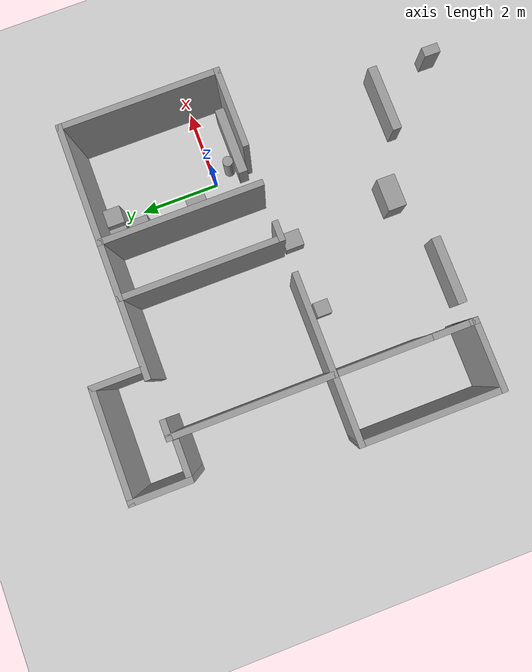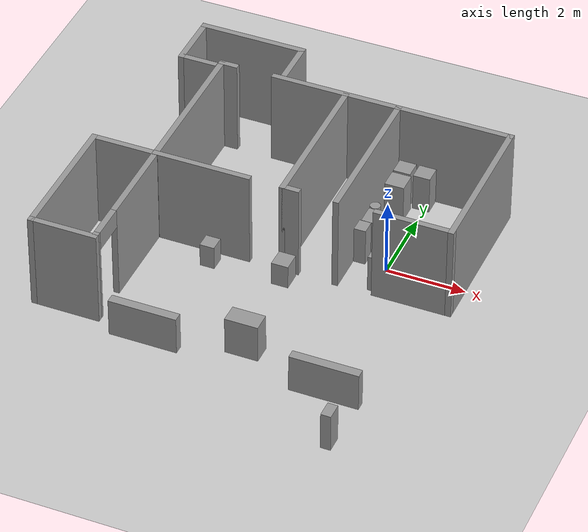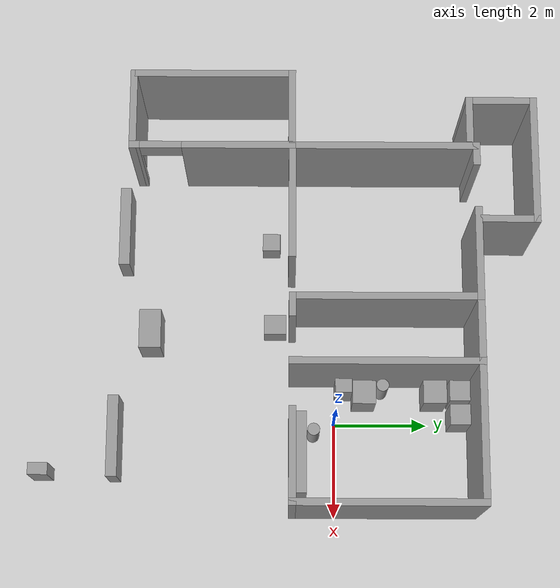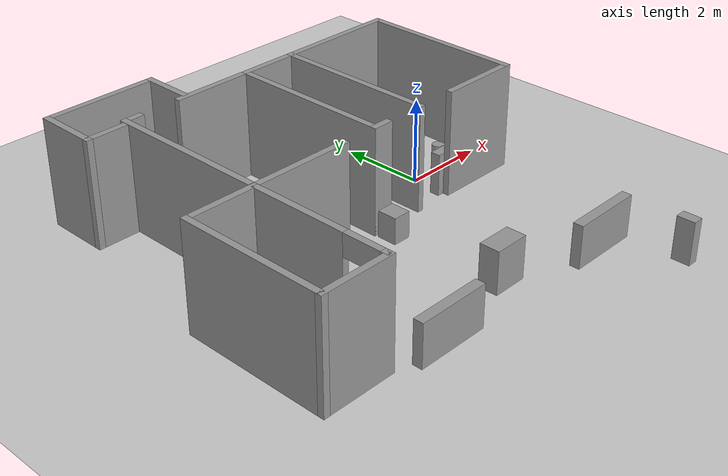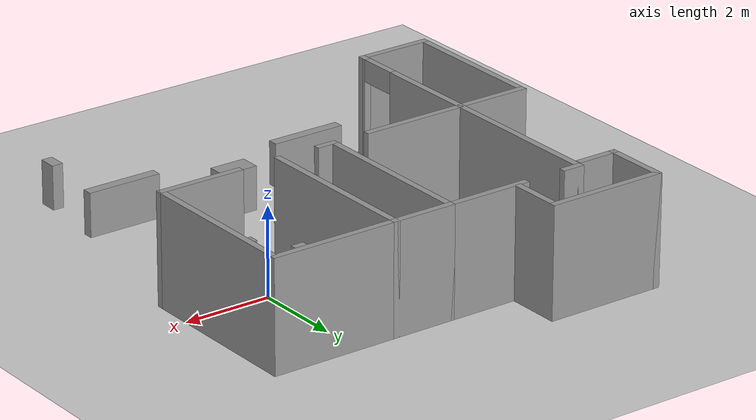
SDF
<sdf version="1.9">
 <world name="default">
  <model name="ground_plane">
   <static>true</static>
   <link name="link">
    <collision name="collision">
     <geometry><plane><normal>0 0 1</normal><size>100 100</size></plane></geometry>
     <surface><friction><ode><mu>100</mu><mu2>50</mu2></ode></friction></surface>
    </collision>
    <visual name="visual">
     <cast_shadows>false</cast_shadows>
     <geometry><plane><normal>0 0 1</normal><size>100 100</size></plane></geometry>
     <material>
      <script><uri>file://media/materials/scripts/gazebo.material</uri><name>Gazebo/Grey</name></script>
     </material>
    </visual>
   </link>
  </model>
  <model name="cma_escritorio">
   <pose>-1.7968200000000001 1.02121 0 0 0 0</pose>
   <link name="Wall_11">
    <collision name="Wall_11_Collision">
     <geometry><box><size>2 0.14999999999999999 2.5</size></box></geometry>
     <pose>0 0 1.25 0 0 0</pose>
    </collision>
    <visual name="Wall_11_Visual">
     <pose>0 0 1.25 0 0 0</pose>
     <geometry><box><size>2 0.14999999999999999 2.5</size></box></geometry>
     <material>
      <script><uri>file://media/materials/scripts/gazebo.material</uri><name>Gazebo/Grey</name></script>
      <ambient>1 1 1 1</ambient>
     </material>
    </visual>
    <pose>-1.3999999999999999 1.9299999999999999 0 0 0 3.1415899999999999</pose>
   </link>
   <link name="Wall_2">
    <collision name="Wall_2_Collision">
     <geometry><box><size>4 0.14999999999999999 2.5</size></box></geometry>
     <pose>0 0 1.25 0 0 0</pose>
    </collision>
    <visual name="Wall_2_Visual">
     <pose>0 0 1.25 0 0 0</pose>
     <geometry><box><size>4 0.14999999999999999 2.5</size></box></geometry>
     <material>
      <script><uri>file://media/materials/scripts/gazebo.material</uri><name>Gazebo/Grey</name></script>
      <ambient>1 1 1 1</ambient>
     </material>
    </visual>
    <pose>0.875 0.0050000000000000001 0 0 0 1.5708</pose>
   </link>
   <link name="Wall_25">
    <collision name="Wall_25_Collision">
     <geometry><box><size>2.5 0.14999999999999999 2.5</size></box></geometry>
     <pose>0 0 1.25 0 0 0</pose>
    </collision>
    <visual name="Wall_25_Visual">
     <pose>0 0 1.25 0 0 0</pose>
     <geometry><box><size>2.5 0.14999999999999999 2.5</size></box></geometry>
     <material>
      <script><uri>file://media/materials/scripts/gazebo.material</uri><name>Gazebo/Grey</name></script>
      <ambient>1 1 1 1</ambient>
     </material>
    </visual>
    <pose>-2.5499999999999998 -1.9299999999999999 0 0 0 3.1415899999999999</pose>
   </link>
   <link name="Wall_26">
    <collision name="Wall_26_Collision">
     <geometry><box><size>4 0.14999999999999999 2.5</size></box></geometry>
     <pose>0 0 1.25 0 0 0</pose>
    </collision>
    <visual name="Wall_26_Visual">
     <pose>0 0 1.25 0 0 0</pose>
     <geometry><box><size>4 0.14999999999999999 2.5</size></box></geometry>
     <material>
      <script><uri>file://media/materials/scripts/gazebo.material</uri><name>Gazebo/Grey</name></script>
      <ambient>1 1 1 1</ambient>
     </material>
    </visual>
    <pose>-3.7250000000000001 -0.0050000000000000001 0 0 0 1.5708</pose>
   </link>
   <link name="Wall_27">
    <collision name="Wall_27_Collision">
     <geometry><box><size>0.5 0.14999999999999999 2.5</size></box></geometry>
     <pose>0 0 1.25 0 0 0</pose>
    </collision>
    <visual name="Wall_27_Visual">
     <pose>0 0 1.25 0 0 0</pose>
     <geometry><box><size>0.5 0.14999999999999999 2.5</size></box></geometry>
     <material>
      <script><uri>file://media/materials/scripts/gazebo.material</uri><name>Gazebo/Grey</name></script>
      <ambient>1 1 1 1</ambient>
     </material>
    </visual>
    <pose>-3.5499999999999998 1.9199999999999999 0 0 0 0</pose>
   </link>
   <link name="Wall_3">
    <collision name="Wall_3_Collision">
     <geometry><box><size>3 0.14999999999999999 2.5</size></box></geometry>
     <pose>0 0 1.25 0 0 0</pose>
    </collision>
    <visual name="Wall_3_Visual">
     <pose>0 0 1.25 0 0 0</pose>
     <geometry><box><size>3 0.14999999999999999 2.5</size></box></geometry>
     <material>
      <script><uri>file://media/materials/scripts/gazebo.material</uri><name>Gazebo/Grey</name></script>
      <ambient>1 1 1 1</ambient>
     </material>
    </visual>
    <pose>2.2999999999999998 1.9299999999999999 0 0 0 0</pose>
   </link>
   <link name="Wall_4">
    <collision name="Wall_4_Collision">
     <geometry><box><size>4 0.14999999999999999 2.5</size></box></geometry>
     <pose>0 0 1.25 0 0 0</pose>
    </collision>
    <visual name="Wall_4_Visual">
     <pose>0 0 1.25 0 0 0</pose>
     <geometry><box><size>4 0.14999999999999999 2.5</size></box></geometry>
     <material>
      <script><uri>file://media/materials/scripts/gazebo.material</uri><name>Gazebo/Grey</name></script>
      <ambient>1 1 1 1</ambient>
     </material>
    </visual>
    <pose>3.7250000000000001 0.0050000000000000001 0 0 0 -1.5708</pose>
   </link>
   <link name="Wall_5">
    <collision name="Wall_5_Collision">
     <geometry><box><size>2 0.14999999999999999 2.5</size></box></geometry>
     <pose>0 0 1.25 0 0 0</pose>
    </collision>
    <visual name="Wall_5_Visual">
     <pose>0 0 1.25 0 0 0</pose>
     <geometry><box><size>2 0.14999999999999999 2.5</size></box></geometry>
     <material>
      <script><uri>file://media/materials/scripts/gazebo.material</uri><name>Gazebo/Grey</name></script>
      <ambient>1 1 1 1</ambient>
     </material>
    </visual>
    <pose>2.7999999999999998 -1.9199999999999999 0 0 0 3.1415899999999999</pose>
   </link>
   <link name="Wall_7">
    <collision name="Wall_7_Collision">
     <geometry><box><size>1.5 0.14999999999999999 2.5</size></box></geometry>
     <pose>0 0 1.25 0 0 0</pose>
    </collision>
    <visual name="Wall_7_Visual">
     <pose>0 0 1.25 0 0 0</pose>
     <geometry><box><size>1.5 0.14999999999999999 2.5</size></box></geometry>
     <material>
      <script><uri>file://media/materials/scripts/gazebo.material</uri><name>Gazebo/Grey</name></script>
      <ambient>1 1 1 1</ambient>
     </material>
    </visual>
    <pose>0.20000000000000001 1.9299999999999999 0 0 0 3.1415899999999999</pose>
   </link>
   <link name="Wall_8">
    <collision name="Wall_8_Collision">
     <geometry><box><size>4 0.14999999999999999 2.5</size></box></geometry>
     <pose>0 0 1.25 0 0 0</pose>
    </collision>
    <visual name="Wall_8_Visual">
     <pose>0 0 1.25 0 0 0</pose>
     <geometry><box><size>4 0.14999999999999999 2.5</size></box></geometry>
     <material>
      <script><uri>file://media/materials/scripts/gazebo.material</uri><name>Gazebo/Grey</name></script>
      <ambient>1 1 1 1</ambient>
     </material>
    </visual>
    <pose>-0.47499999999999998 0.0050000000000000001 0 0 0 -1.5708</pose>
   </link>
   <link name="Wall_9">
    <collision name="Wall_9_Collision">
     <geometry><box><size>0.5 0.14999999999999999 2.5</size></box></geometry>
     <pose>0 0 1.25 0 0 0</pose>
    </collision>
    <visual name="Wall_9_Visual">
     <pose>0 0 1.25 0 0 0</pose>
     <geometry><box><size>0.5 0.14999999999999999 2.5</size></box></geometry>
     <material>
      <script><uri>file://media/materials/scripts/gazebo.material</uri><name>Gazebo/Grey</name></script>
      <ambient>1 1 1 1</ambient>
     </material>
    </visual>
    <pose>-0.29999999999999999 -1.9199999999999999 0 0 0 0</pose>
   </link>
   <static>true</static>
  </model>
  <model name="cma_banheiro">
   <pose>-5.2292800000000002 3.4870999999999999 0 0 0 0</pose>
   <link name="Wall_0">
    <collision name="Wall_0_Collision">
     <geometry><box><size>1 0.14999999999999999 2.5</size></box></geometry>
     <pose>0 0 1.25 0 0 0</pose>
    </collision>
    <visual name="Wall_0_Visual">
     <pose>0 0 1.25 0 0 0</pose>
     <geometry><box><size>1 0.14999999999999999 2.5</size></box></geometry>
     <material>
      <script><uri>file://media/materials/scripts/gazebo.material</uri><name>Gazebo/Grey</name></script>
      <ambient>1 1 1 1</ambient>
     </material>
    </visual>
    <pose>-0.875 -0.67500000000000004 0 0 0 3.1415899999999999</pose>
   </link>
   <link name="Wall_1">
    <collision name="Wall_1_Collision">
     <geometry><box><size>1.5 0.14999999999999999 2.5</size></box></geometry>
     <pose>0 0 1.25 0 0 0</pose>
    </collision>
    <visual name="Wall_1_Visual">
     <pose>0 0 1.25 0 0 0</pose>
     <geometry><box><size>1.5 0.14999999999999999 2.5</size></box></geometry>
     <material>
      <script><uri>file://media/materials/scripts/gazebo.material</uri><name>Gazebo/Grey</name></script>
      <ambient>1 1 1 1</ambient>
     </material>
    </visual>
    <pose>-1.3 0 0 0 0 1.5708</pose>
   </link>
   <link name="Wall_2">
    <collision name="Wall_2_Collision">
     <geometry><box><size>2.75 0.14999999999999999 2.5</size></box></geometry>
     <pose>0 0 1.25 0 0 0</pose>
    </collision>
    <visual name="Wall_2_Visual">
     <pose>0 0 1.25 0 0 0</pose>
     <geometry><box><size>2.75 0.14999999999999999 2.5</size></box></geometry>
     <material>
      <script><uri>file://media/materials/scripts/gazebo.material</uri><name>Gazebo/Grey</name></script>
      <ambient>1 1 1 1</ambient>
     </material>
    </visual>
    <pose>0 0.67500000000000004 0 0 0 0</pose>
   </link>
   <link name="Wall_4">
    <collision name="Wall_4_Collision">
     <geometry><box><size>1.25 0.14999999999999999 2.5</size></box></geometry>
     <pose>0 0 1.25 0 0 0</pose>
    </collision>
    <visual name="Wall_4_Visual">
     <pose>0 0 1.25 0 0 0</pose>
     <geometry><box><size>1.25 0.14999999999999999 2.5</size></box></geometry>
     <material>
      <script><uri>file://media/materials/scripts/gazebo.material</uri><name>Gazebo/Grey</name></script>
      <ambient>1 1 1 1</ambient>
     </material>
    </visual>
    <pose>1.3 0.125 0 0 0 -1.5708</pose>
   </link>
   <static>true</static>
  </model>
  <model name="cma_varanda1">
   <pose>-6.3251799999999996 -2.5931299999999999 0 0 0 0</pose>
   <link name="Wall_0">
    <pose>0.80000000000000004 0 0 0 0 -1.5708</pose>
    <visual name="Wall_0_Visual_0">
     <pose>-0.55249999999999999 0 1.25 0 0 0</pose>
     <geometry><box><size>2.395 0.14999999999999999 2.5</size></box></geometry>
     <material>
      <script><uri>file://media/materials/scripts/gazebo.material</uri><name>Gazebo/Grey</name></script>
      <ambient>1 1 1 1</ambient>
     </material>
    </visual>
    <collision name="Wall_0_Collision_0">
     <geometry><box><size>2.395 0.14999999999999999 2.5</size></box></geometry>
     <pose>-0.55249999999999999 0 1.25 0 0 0</pose>
    </collision>
    <visual name="Wall_0_Visual_1">
     <pose>1.6375 0 1.25 0 0 0</pose>
     <geometry><box><size>0.22500000000000001 0.14999999999999999 2.5</size></box></geometry>
     <material>
      <script><uri>file://media/materials/scripts/gazebo.material</uri><name>Gazebo/Grey</name></script>
      <ambient>1 1 1 1</ambient>
     </material>
    </visual>
    <collision name="Wall_0_Collision_1">
     <geometry><box><size>0.22500000000000001 0.14999999999999999 2.5</size></box></geometry>
     <pose>1.6375 0 1.25 0 0 0</pose>
    </collision>
    <visual name="Wall_0_Visual_2">
     <pose>1.085 0 2.25 0 0 0</pose>
     <geometry><box><size>0.88 0.14999999999999999 0.5</size></box></geometry>
     <material>
      <script><uri>file://media/materials/scripts/gazebo.material</uri><name>Gazebo/Grey</name></script>
      <ambient>1 1 1 1</ambient>
     </material>
    </visual>
    <collision name="Wall_0_Collision_2">
     <geometry><box><size>0.88 0.14999999999999999 0.5</size></box></geometry>
     <pose>1.085 0 2.25 0 0 0</pose>
    </collision>
   </link>
   <link name="Wall_1">
    <collision name="Wall_1_Collision">
     <geometry><box><size>1.75 0.14999999999999999 2.5</size></box></geometry>
     <pose>0 0 1.25 0 0 0</pose>
    </collision>
    <visual name="Wall_1_Visual">
     <pose>0 0 1.25 0 0 0</pose>
     <geometry><box><size>1.75 0.14999999999999999 2.5</size></box></geometry>
     <material>
      <script><uri>file://media/materials/scripts/gazebo.material</uri><name>Gazebo/Grey</name></script>
      <ambient>1 1 1 1</ambient>
     </material>
    </visual>
    <pose>0 -1.675 0 0 0 3.1415899999999999</pose>
   </link>
   <link name="Wall_2">
    <collision name="Wall_2_Collision">
     <geometry><box><size>3.5 0.14999999999999999 2.5</size></box></geometry>
     <pose>0 0 1.25 0 0 0</pose>
    </collision>
    <visual name="Wall_2_Visual">
     <pose>0 0 1.25 0 0 0</pose>
     <geometry><box><size>3.5 0.14999999999999999 2.5</size></box></geometry>
     <material>
      <script><uri>file://media/materials/scripts/gazebo.material</uri><name>Gazebo/Grey</name></script>
      <ambient>1 1 1 1</ambient>
     </material>
    </visual>
    <pose>-0.80000000000000004 0 0 0 0 1.5708</pose>
   </link>
   <link name="Wall_3">
    <collision name="Wall_3_Collision">
     <geometry><box><size>1.75 0.14999999999999999 2.5</size></box></geometry>
     <pose>0 0 1.25 0 0 0</pose>
    </collision>
    <visual name="Wall_3_Visual">
     <pose>0 0 1.25 0 0 0</pose>
     <geometry><box><size>1.75 0.14999999999999999 2.5</size></box></geometry>
     <material>
      <script><uri>file://media/materials/scripts/gazebo.material</uri><name>Gazebo/Grey</name></script>
      <ambient>1 1 1 1</ambient>
     </material>
    </visual>
    <pose>0 1.675 0 0 0 0</pose>
   </link>
   <static>true</static>
  </model>
  <model name="cma_armario">
   <link name="link_0">
    <pose>1.3215699999999999 0.88517800000000002 0.5 0 0 0</pose>
    <inertial>
     <mass>0.40237600000000001</mass>
     <inertia>
      <ixx>0.0353686</ixx>
      <ixy>0</ixy>
      <ixz>0</ixz>
      <iyy>0.13261600000000001</iyy>
      <iyz>0</iyz>
      <izz>0.100922</izz>
     </inertia>
    </inertial>
    <visual name="visual">
     <geometry><box><size>1.7187699999999999 0.234069 1</size></box></geometry>
     <material>
      <lighting>true</lighting>
      <script><uri>file://media/materials/scripts/gazebo.material</uri><name>Gazebo/Grey</name></script>
      <ambient>0.300000012 0.300000012 0.300000012 1</ambient>
      <diffuse>0.699999988 0.699999988 0.699999988 1</diffuse>
      <specular>0.00999999978 0.00999999978 0.00999999978 1</specular>
      <emissive>0 0 0 1</emissive>
     </material>
    </visual>
    <collision name="collision">
     <geometry><box><size>1.7187699999999999 0.234069 1</size></box></geometry>
     <surface>
      <friction>
       <ode><mu>1</mu><mu2>1</mu2><fdir1>0 0 0</fdir1><slip1>0</slip1><slip2>0</slip2></ode>
       <torsional>
        <coefficient>1</coefficient>
        <patch_radius>0</patch_radius>
        <surface_radius>0</surface_radius>
        <use_patch_radius>true</use_patch_radius>
        <ode><slip>0</slip></ode>
       </torsional>
      </friction>
      <bounce><restitution_coefficient>0</restitution_coefficient><threshold>1000000</threshold></bounce>
      <contact>
       <collide_without_contact>false</collide_without_contact>
       <collide_without_contact_bitmask>1</collide_without_contact_bitmask>
       <collide_bitmask>1</collide_bitmask>
       <ode>
        <soft_cfm>0</soft_cfm>
        <soft_erp>0.20000000000000001</soft_erp>
        <kp>10000000000000</kp>
        <kd>1</kd>
        <max_vel>0.01</max_vel>
        <min_depth>0</min_depth>
       </ode>
       <bullet>
        <split_impulse>true</split_impulse>
        <split_impulse_penetration_threshold>-0.01</split_impulse_penetration_threshold>
        <soft_cfm>0</soft_cfm>
        <soft_erp>0.20000000000000001</soft_erp>
        <kp>10000000000000</kp>
        <kd>1</kd>
       </bullet>
      </contact>
     </surface>
    </collision>
   </link>
   <static>false</static>
   <pose>-0.61409400000000003 -1.5922099999999999 -1.4e-05 0 -6.0000000000000002e-06 0.0008259999999999998</pose>
  </model>
  <model name="cma_lixo">
   <link name="link_1">
    <pose>0.88296200000000002 1.81586 0.5 0 0 0</pose>
    <inertial>
     <mass>0.068764400000000003</mass>
     <inertia>
      <ixx>0.00602588</ixx>
      <ixy>0</ixy>
      <ixz>0</ixz>
      <iyy>0.00602588</iyy>
      <iyz>0</iyz>
      <izz>0.00059106800000000004</izz>
     </inertia>
    </inertial>
    <visual name="visual">
     <geometry><cylinder><radius>0.13111200000000001</radius><length>1</length></cylinder></geometry>
     <material>
      <lighting>true</lighting>
      <script><uri>file://media/materials/scripts/gazebo.material</uri><name>Gazebo/Grey</name></script>
      <ambient>0.300000012 0.300000012 0.300000012 1</ambient>
      <diffuse>0.699999988 0.699999988 0.699999988 1</diffuse>
      <specular>0.00999999978 0.00999999978 0.00999999978 1</specular>
      <emissive>0 0 0 1</emissive>
     </material>
    </visual>
    <collision name="collision">
     <geometry><cylinder><radius>0.13111200000000001</radius><length>1</length></cylinder></geometry>
     <surface>
      <friction>
       <ode><mu>1</mu><mu2>1</mu2><fdir1>0 0 0</fdir1><slip1>0</slip1><slip2>0</slip2></ode>
       <torsional>
        <coefficient>1</coefficient>
        <patch_radius>0</patch_radius>
        <surface_radius>0</surface_radius>
        <use_patch_radius>true</use_patch_radius>
        <ode><slip>0</slip></ode>
       </torsional>
      </friction>
      <bounce><restitution_coefficient>0</restitution_coefficient><threshold>1000000</threshold></bounce>
      <contact>
       <collide_without_contact>false</collide_without_contact>
       <collide_without_contact_bitmask>1</collide_without_contact_bitmask>
       <collide_bitmask>1</collide_bitmask>
       <ode>
        <soft_cfm>0</soft_cfm>
        <soft_erp>0.20000000000000001</soft_erp>
        <kp>10000000000000</kp>
        <kd>1</kd>
        <max_vel>0.01</max_vel>
        <min_depth>0</min_depth>
       </ode>
       <bullet>
        <split_impulse>true</split_impulse>
        <split_impulse_penetration_threshold>-0.01</split_impulse_penetration_threshold>
        <soft_cfm>0</soft_cfm>
        <soft_erp>0.20000000000000001</soft_erp>
        <kp>10000000000000</kp>
        <kd>1</kd>
       </bullet>
      </contact>
     </surface>
    </collision>
   </link>
   <static>false</static>
   <pose>-0.62784099999999998 -2.2669899999999998 -9.9999999999999995e-07 0 0 0.010421999999999999</pose>
  </model>
  <model name="cma_gaveteiro_pequeno">
   <link name="link_0">
    <pose>0.25617400000000001 1.2505500000000001 0.5 0 0 0</pose>
    <inertial>
     <mass>0.18718599999999999</mass>
     <inertia>
      <ixx>0.018509999999999999</ixx>
      <ixy>0</ixy>
      <ixz>0</ixz>
      <iyy>0.018527600000000002</iyy>
      <iyz>0</iyz>
      <izz>0.00583981</izz>
     </inertia>
    </inertial>
    <visual name="visual">
     <geometry><box><size>0.43331700000000001 0.432002 1</size></box></geometry>
     <material>
      <lighting>true</lighting>
      <script><uri>file://media/materials/scripts/gazebo.material</uri><name>Gazebo/Grey</name></script>
      <ambient>0.300000012 0.300000012 0.300000012 1</ambient>
      <diffuse>0.699999988 0.699999988 0.699999988 1</diffuse>
      <specular>0.00999999978 0.00999999978 0.00999999978 1</specular>
      <emissive>0 0 0 1</emissive>
     </material>
    </visual>
    <collision name="collision">
     <geometry><box><size>0.43331700000000001 0.432002 1</size></box></geometry>
     <surface>
      <friction>
       <ode><mu>1</mu><mu2>1</mu2><fdir1>0 0 0</fdir1><slip1>0</slip1><slip2>0</slip2></ode>
       <torsional>
        <coefficient>1</coefficient>
        <patch_radius>0</patch_radius>
        <surface_radius>0</surface_radius>
        <use_patch_radius>true</use_patch_radius>
        <ode><slip>0</slip></ode>
       </torsional>
      </friction>
      <bounce><restitution_coefficient>0</restitution_coefficient><threshold>1000000</threshold></bounce>
      <contact>
       <collide_without_contact>false</collide_without_contact>
       <collide_without_contact_bitmask>1</collide_without_contact_bitmask>
       <collide_bitmask>1</collide_bitmask>
       <ode>
        <soft_cfm>0</soft_cfm>
        <soft_erp>0.20000000000000001</soft_erp>
        <kp>10000000000000</kp>
        <kd>1</kd>
        <max_vel>0.01</max_vel>
        <min_depth>0</min_depth>
       </ode>
       <bullet>
        <split_impulse>true</split_impulse>
        <split_impulse_penetration_threshold>-0.01</split_impulse_penetration_threshold>
        <soft_cfm>0</soft_cfm>
        <soft_erp>0.20000000000000001</soft_erp>
        <kp>10000000000000</kp>
        <kd>1</kd>
       </bullet>
      </contact>
     </surface>
    </collision>
   </link>
   <static>false</static>
   <pose>-0.85304000000000002 1.39432 0 0 0 2.5000000000000001e-05</pose>
  </model>
  <model name="cma_gaveteiro_pequeno_0">
   <link name="link_0">
    <pose>0.25617400000000001 1.2505500000000001 0.5 0 0 0</pose>
    <inertial>
     <mass>0.18718599999999999</mass>
     <inertia>
      <ixx>0.018509999999999999</ixx>
      <ixy>0</ixy>
      <ixz>0</ixz>
      <iyy>0.018527600000000002</iyy>
      <iyz>0</iyz>
      <izz>0.00583981</izz>
     </inertia>
    </inertial>
    <visual name="visual">
     <geometry><box><size>0.43331700000000001 0.432002 1</size></box></geometry>
     <material>
      <lighting>true</lighting>
      <script><uri>file://media/materials/scripts/gazebo.material</uri><name>Gazebo/Grey</name></script>
      <ambient>0.300000012 0.300000012 0.300000012 1</ambient>
      <diffuse>0.699999988 0.699999988 0.699999988 1</diffuse>
      <specular>0.00999999978 0.00999999978 0.00999999978 1</specular>
      <emissive>0 0 0 1</emissive>
     </material>
    </visual>
    <collision name="collision">
     <geometry><box><size>0.43331700000000001 0.432002 1</size></box></geometry>
     <surface>
      <friction>
       <ode><mu>1</mu><mu2>1</mu2><fdir1>0 0 0</fdir1><slip1>0</slip1><slip2>0</slip2></ode>
       <torsional>
        <coefficient>1</coefficient>
        <patch_radius>0</patch_radius>
        <surface_radius>0</surface_radius>
        <use_patch_radius>true</use_patch_radius>
        <ode><slip>0</slip></ode>
       </torsional>
      </friction>
      <bounce><restitution_coefficient>0</restitution_coefficient><threshold>1000000</threshold></bounce>
      <contact>
       <collide_without_contact>false</collide_without_contact>
       <collide_without_contact_bitmask>1</collide_without_contact_bitmask>
       <collide_bitmask>1</collide_bitmask>
       <ode>
        <soft_cfm>0</soft_cfm>
        <soft_erp>0.20000000000000001</soft_erp>
        <kp>10000000000000</kp>
        <kd>1</kd>
        <max_vel>0.01</max_vel>
        <min_depth>0</min_depth>
       </ode>
       <bullet>
        <split_impulse>true</split_impulse>
        <split_impulse_penetration_threshold>-0.01</split_impulse_penetration_threshold>
        <soft_cfm>0</soft_cfm>
        <soft_erp>0.20000000000000001</soft_erp>
        <kp>10000000000000</kp>
        <kd>1</kd>
       </bullet>
      </contact>
     </surface>
    </collision>
   </link>
   <static>false</static>
   <pose>-0.34129199999999998 1.3951 0 9.9999999999999974e-07 1.9999999999999999e-06 -4.5000000000000003e-05</pose>
  </model>
  <model name="cma_gaveteiro">
   <link name="link_0">
    <pose>0 3.9999999999999998e-06 0 0 0 0</pose>
    <inertial>
     <mass>0.245086</mass>
     <inertia>
      <ixx>0.025418</ixx>
      <ixy>0</ixy>
      <ixz>0</ixz>
      <iyy>0.025441100000000001</iyy>
      <iyz>0</iyz>
      <izz>0.010011300000000001</izz>
     </inertia>
    </inertial>
    <visual name="visual">
     <geometry><box><size>0.49565700000000001 0.49449100000000001 1</size></box></geometry>
     <material>
      <lighting>true</lighting>
      <script><uri>file://media/materials/scripts/gazebo.material</uri><name>Gazebo/Grey</name></script>
      <ambient>0.300000012 0.300000012 0.300000012 1</ambient>
      <diffuse>0.699999988 0.699999988 0.699999988 1</diffuse>
      <specular>0.00999999978 0.00999999978 0.00999999978 1</specular>
      <emissive>0 0 0 1</emissive>
     </material>
    </visual>
    <collision name="collision">
     <geometry><box><size>0.49565700000000001 0.49449100000000001 1</size></box></geometry>
     <surface>
      <friction>
       <ode><mu>1</mu><mu2>1</mu2><fdir1>0 0 0</fdir1><slip1>0</slip1><slip2>0</slip2></ode>
       <torsional>
        <coefficient>1</coefficient>
        <patch_radius>0</patch_radius>
        <surface_radius>0</surface_radius>
        <use_patch_radius>true</use_patch_radius>
        <ode><slip>0</slip></ode>
       </torsional>
      </friction>
      <bounce><restitution_coefficient>0</restitution_coefficient><threshold>1000000</threshold></bounce>
      <contact>
       <collide_without_contact>false</collide_without_contact>
       <collide_without_contact_bitmask>1</collide_without_contact_bitmask>
       <collide_bitmask>1</collide_bitmask>
       <ode>
        <soft_cfm>0</soft_cfm>
        <soft_erp>0.20000000000000001</soft_erp>
        <kp>10000000000000</kp>
        <kd>1</kd>
        <max_vel>0.01</max_vel>
        <min_depth>0</min_depth>
       </ode>
       <bullet>
        <split_impulse>true</split_impulse>
        <split_impulse_penetration_threshold>-0.01</split_impulse_penetration_threshold>
        <soft_cfm>0</soft_cfm>
        <soft_erp>0.20000000000000001</soft_erp>
        <kp>10000000000000</kp>
        <kd>1</kd>
       </bullet>
      </contact>
     </surface>
    </collision>
   </link>
   <static>false</static>
   <pose>-0.56907399999999997 2.1223000000000001 0.499998 -4.9999999999999996e-06 -4.0000000000000015e-06 0.00033100000000000008</pose>
  </model>
  <model name="cma_gaveteiro_0">
   <link name="link_0">
    <pose>0 3.9999999999999998e-06 0 0 0 0</pose>
    <inertial>
     <mass>0.245086</mass>
     <inertia>
      <ixx>0.025418</ixx>
      <ixy>0</ixy>
      <ixz>0</ixz>
      <iyy>0.025441100000000001</iyy>
      <iyz>0</iyz>
      <izz>0.010011300000000001</izz>
     </inertia>
    </inertial>
    <visual name="visual">
     <geometry><box><size>0.49565700000000001 0.49449100000000001 1</size></box></geometry>
     <material>
      <lighting>true</lighting>
      <script><uri>file://media/materials/scripts/gazebo.material</uri><name>Gazebo/Grey</name></script>
      <ambient>0.300000012 0.300000012 0.300000012 1</ambient>
      <diffuse>0.699999988 0.699999988 0.699999988 1</diffuse>
      <specular>0.00999999978 0.00999999978 0.00999999978 1</specular>
      <emissive>0 0 0 1</emissive>
     </material>
    </visual>
    <collision name="collision">
     <geometry><box><size>0.49565700000000001 0.49449100000000001 1</size></box></geometry>
     <surface>
      <friction>
       <ode><mu>1</mu><mu2>1</mu2><fdir1>0 0 0</fdir1><slip1>0</slip1><slip2>0</slip2></ode>
       <torsional>
        <coefficient>1</coefficient>
        <patch_radius>0</patch_radius>
        <surface_radius>0</surface_radius>
        <use_patch_radius>true</use_patch_radius>
        <ode><slip>0</slip></ode>
       </torsional>
      </friction>
      <bounce><restitution_coefficient>0</restitution_coefficient><threshold>1000000</threshold></bounce>
      <contact>
       <collide_without_contact>false</collide_without_contact>
       <collide_without_contact_bitmask>1</collide_without_contact_bitmask>
       <collide_bitmask>1</collide_bitmask>
       <ode>
        <soft_cfm>0</soft_cfm>
        <soft_erp>0.20000000000000001</soft_erp>
        <kp>10000000000000</kp>
        <kd>1</kd>
        <max_vel>0.01</max_vel>
        <min_depth>0</min_depth>
       </ode>
       <bullet>
        <split_impulse>true</split_impulse>
        <split_impulse_penetration_threshold>-0.01</split_impulse_penetration_threshold>
        <soft_cfm>0</soft_cfm>
        <soft_erp>0.20000000000000001</soft_erp>
        <kp>10000000000000</kp>
        <kd>1</kd>
       </bullet>
      </contact>
     </surface>
    </collision>
   </link>
   <static>false</static>
   <pose>-0.560145 0.62360099999999996 0.5 0 0 -0.0078100000000000001</pose>
  </model>
  <model name="cma_lixo_0">
   <link name="link_1">
    <pose>0.88296200000000002 1.81586 0.5 0 0 0</pose>
    <inertial>
     <mass>0.068764400000000003</mass>
     <inertia>
      <ixx>0.00602588</ixx>
      <ixy>0</ixy>
      <ixz>0</ixz>
      <iyy>0.00602588</iyy>
      <iyz>0</iyz>
      <izz>0.00059106800000000004</izz>
     </inertia>
    </inertial>
    <visual name="visual">
     <geometry><cylinder><radius>0.13111200000000001</radius><length>1</length></cylinder></geometry>
     <material>
      <lighting>true</lighting>
      <script><uri>file://media/materials/scripts/gazebo.material</uri><name>Gazebo/Grey</name></script>
      <ambient>0.300000012 0.300000012 0.300000012 1</ambient>
      <diffuse>0.699999988 0.699999988 0.699999988 1</diffuse>
      <specular>0.00999999978 0.00999999978 0.00999999978 1</specular>
      <emissive>0 0 0 1</emissive>
     </material>
    </visual>
    <collision name="collision">
     <geometry><cylinder><radius>0.13111200000000001</radius><length>1</length></cylinder></geometry>
     <surface>
      <friction>
       <ode><mu>1</mu><mu2>1</mu2><fdir1>0 0 0</fdir1><slip1>0</slip1><slip2>0</slip2></ode>
       <torsional>
        <coefficient>1</coefficient>
        <patch_radius>0</patch_radius>
        <surface_radius>0</surface_radius>
        <use_patch_radius>true</use_patch_radius>
        <ode><slip>0</slip></ode>
       </torsional>
      </friction>
      <bounce><restitution_coefficient>0</restitution_coefficient><threshold>1000000</threshold></bounce>
      <contact>
       <collide_without_contact>false</collide_without_contact>
       <collide_without_contact_bitmask>1</collide_without_contact_bitmask>
       <collide_bitmask>1</collide_bitmask>
       <ode>
        <soft_cfm>0</soft_cfm>
        <soft_erp>0.20000000000000001</soft_erp>
        <kp>10000000000000</kp>
        <kd>1</kd>
        <max_vel>0.01</max_vel>
        <min_depth>0</min_depth>
       </ode>
       <bullet>
        <split_impulse>true</split_impulse>
        <split_impulse_penetration_threshold>-0.01</split_impulse_penetration_threshold>
        <soft_cfm>0</soft_cfm>
        <soft_erp>0.20000000000000001</soft_erp>
        <kp>10000000000000</kp>
        <kd>1</kd>
       </bullet>
      </contact>
     </surface>
    </collision>
   </link>
   <static>false</static>
   <pose>-1.5905199999999999 -0.796852 -3.0000000000000001e-06 0 0 0.0007049999999999999</pose>
  </model>
  <model name="unit_box_0">
   <pose>-0.697515 0.193796 0.5 0 0 3.9999999999999998e-06</pose>
   <link name="link">
    <inertial>
     <mass>1</mass>
     <inertia>
      <ixx>0.16666700000000001</ixx>
      <ixy>0</ixy>
      <ixz>0</ixz>
      <iyy>0.16666700000000001</iyy>
      <iyz>0</iyz>
      <izz>0.16666700000000001</izz>
     </inertia>
    </inertial>
    <collision name="collision"><geometry><box><size>0.298595 0.35513 1</size></box></geometry></collision>
    <visual name="visual">
     <geometry><box><size>0.298595 0.35513 1</size></box></geometry>
     <material>
      <script><name>Gazebo/Grey</name><uri>file://media/materials/scripts/gazebo.material</uri></script>
     </material>
    </visual>
   </link>
  </model>
  <model name="cma_bau_s">
   <link name="link_1">
    <pose>0.109594 0.27229300000000001 0 0 0 0</pose>
    <inertial>
     <mass>0.12547900000000001</mass>
     <inertia>
      <ixx>0.0064194300000000003</ixx>
      <ixy>0</ixy>
      <ixz>0</ixz>
      <iyy>0.0059753999999999996</iyy>
      <iyz>0</iyz>
      <izz>0.0042208499999999999</izz>
     </inertia>
    </inertial>
    <visual name="visual">
     <geometry><box><size>0.42496400000000001 0.47228300000000001 0.62511799999999995</size></box></geometry>
     <material>
      <lighting>true</lighting>
      <script><uri>file://media/materials/scripts/gazebo.material</uri><name>Gazebo/Grey</name></script>
      <ambient>0.300000012 0.300000012 0.300000012 1</ambient>
      <diffuse>0.699999988 0.699999988 0.699999988 1</diffuse>
      <specular>0.00999999978 0.00999999978 0.00999999978 1</specular>
      <emissive>0 0 0 1</emissive>
     </material>
    </visual>
    <collision name="collision">
     <geometry><box><size>0.42496400000000001 0.47228300000000001 0.62511799999999995</size></box></geometry>
     <surface>
      <friction>
       <ode><mu>1</mu><mu2>1</mu2><fdir1>0 0 0</fdir1><slip1>0</slip1><slip2>0</slip2></ode>
       <torsional>
        <coefficient>1</coefficient>
        <patch_radius>0</patch_radius>
        <surface_radius>0</surface_radius>
        <use_patch_radius>true</use_patch_radius>
        <ode><slip>0</slip></ode>
       </torsional>
      </friction>
      <bounce><restitution_coefficient>0</restitution_coefficient><threshold>1000000</threshold></bounce>
      <contact>
       <collide_without_contact>false</collide_without_contact>
       <collide_without_contact_bitmask>1</collide_without_contact_bitmask>
       <collide_bitmask>1</collide_bitmask>
       <ode>
        <soft_cfm>0</soft_cfm>
        <soft_erp>0.20000000000000001</soft_erp>
        <kp>10000000000000</kp>
        <kd>1</kd>
        <max_vel>0.01</max_vel>
        <min_depth>0</min_depth>
       </ode>
       <bullet>
        <split_impulse>true</split_impulse>
        <split_impulse_penetration_threshold>-0.01</split_impulse_penetration_threshold>
        <soft_cfm>0</soft_cfm>
        <soft_erp>0.20000000000000001</soft_erp>
        <kp>10000000000000</kp>
        <kd>1</kd>
       </bullet>
      </contact>
     </surface>
    </collision>
   </link>
   <static>false</static>
   <pose>-2.2097699999999998 -1.5406299999999999 0.31255300000000003 1.2999999999999998e-05 2.9999999999999997e-06 9.9999999999999995e-07</pose>
  </model>
  <model name="cma_armario_s">
   <link name="link_1">
    <pose>-1.9999999999999999e-06 -3.0000000000000001e-06 0 0 0 0</pose>
    <inertial>
     <mass>0.39015899999999998</mass>
     <inertia>
      <ixx>0.039647000000000002</ixx>
      <ixy>0</ixy>
      <ixz>0</ixz>
      <iyy>0.055070800000000003</iyy>
      <iyz>0</iyz>
      <izz>0.029691200000000001</izz>
     </inertia>
    </inertial>
    <visual name="visual">
     <geometry><box><size>0.83294199999999996 0.46839700000000001 1</size></box></geometry>
     <material>
      <lighting>true</lighting>
      <script><uri>file://media/materials/scripts/gazebo.material</uri><name>Gazebo/Grey</name></script>
      <ambient>0.300000012 0.300000012 0.300000012 1</ambient>
      <diffuse>0.699999988 0.699999988 0.699999988 1</diffuse>
      <specular>0.00999999978 0.00999999978 0.00999999978 1</specular>
      <emissive>0 0 0 1</emissive>
     </material>
    </visual>
    <collision name="collision">
     <geometry><box><size>0.83294199999999996 0.46839700000000001 1</size></box></geometry>
     <surface>
      <friction>
       <ode><mu>1</mu><mu2>1</mu2><fdir1>0 0 0</fdir1><slip1>0</slip1><slip2>0</slip2></ode>
       <torsional>
        <coefficient>1</coefficient>
        <patch_radius>0</patch_radius>
        <surface_radius>0</surface_radius>
        <use_patch_radius>true</use_patch_radius>
        <ode><slip>0</slip></ode>
       </torsional>
      </friction>
      <bounce><restitution_coefficient>0</restitution_coefficient><threshold>1000000</threshold></bounce>
      <contact>
       <collide_without_contact>false</collide_without_contact>
       <collide_without_contact_bitmask>1</collide_without_contact_bitmask>
       <collide_bitmask>1</collide_bitmask>
       <ode>
        <soft_cfm>0</soft_cfm>
        <soft_erp>0.20000000000000001</soft_erp>
        <kp>10000000000000</kp>
        <kd>1</kd>
        <max_vel>0.01</max_vel>
        <min_depth>0</min_depth>
       </ode>
       <bullet>
        <split_impulse>true</split_impulse>
        <split_impulse_penetration_threshold>-0.01</split_impulse_penetration_threshold>
        <soft_cfm>0</soft_cfm>
        <soft_erp>0.20000000000000001</soft_erp>
        <kp>10000000000000</kp>
        <kd>1</kd>
       </bullet>
      </contact>
     </surface>
    </collision>
   </link>
   <static>false</static>
   <pose>-1.91896 -3.93452 0.5 0 0 0.000183</pose>
  </model>
  <model name="cma_apoio_s">
   <link name="link_1">
    <pose>-1.9376 -3.4655100000000001 0.5 0 0 0</pose>
    <inertial>
     <mass>0.087846300000000002</mass>
     <inertia>
      <ixx>0.0039269600000000002</ixx>
      <ixy>0</ixy>
      <ixz>0</ixz>
      <iyy>0.0038535599999999998</iyy>
      <iyz>0</iyz>
      <izz>0.0020587000000000001</izz>
     </inertia>
    </inertial>
    <visual name="visual">
     <geometry><box><size>0.36822300000000002 0.38159199999999999 0.62511799999999995</size></box></geometry>
     <material>
      <lighting>true</lighting>
      <script><uri>file://media/materials/scripts/gazebo.material</uri><name>Gazebo/Grey</name></script>
      <ambient>0.300000012 0.300000012 0.300000012 1</ambient>
      <diffuse>0.699999988 0.699999988 0.699999988 1</diffuse>
      <specular>0.00999999978 0.00999999978 0.00999999978 1</specular>
      <emissive>0 0 0 1</emissive>
     </material>
    </visual>
    <collision name="collision">
     <geometry><box><size>0.36822300000000002 0.38159199999999999 0.62511799999999995</size></box></geometry>
     <surface>
      <friction>
       <ode><mu>1</mu><mu2>1</mu2><fdir1>0 0 0</fdir1><slip1>0</slip1><slip2>0</slip2></ode>
       <torsional>
        <coefficient>1</coefficient>
        <patch_radius>0</patch_radius>
        <surface_radius>0</surface_radius>
        <use_patch_radius>true</use_patch_radius>
        <ode><slip>0</slip></ode>
       </torsional>
      </friction>
      <bounce><restitution_coefficient>0</restitution_coefficient><threshold>1000000</threshold></bounce>
      <contact>
       <collide_without_contact>false</collide_without_contact>
       <collide_without_contact_bitmask>1</collide_without_contact_bitmask>
       <collide_bitmask>1</collide_bitmask>
       <ode>
        <soft_cfm>0</soft_cfm>
        <soft_erp>0.20000000000000001</soft_erp>
        <kp>10000000000000</kp>
        <kd>1</kd>
        <max_vel>0.01</max_vel>
        <min_depth>0</min_depth>
       </ode>
       <bullet>
        <split_impulse>true</split_impulse>
        <split_impulse_penetration_threshold>-0.01</split_impulse_penetration_threshold>
        <soft_cfm>0</soft_cfm>
        <soft_erp>0.20000000000000001</soft_erp>
        <kp>10000000000000</kp>
        <kd>1</kd>
       </bullet>
      </contact>
     </surface>
    </collision>
   </link>
   <static>false</static>
   <pose>-2.0090599999999998 2.1113599999999999 -0.187446 -9.9999999999999995e-07 1.0000000000000002e-06 -0.00060800000000000003</pose>
  </model>
  <model name="cma_armario_0">
   <link name="link_0">
    <pose>1.3215699999999999 0.88517800000000002 0.5 0 0 0</pose>
    <inertial>
     <mass>0.40237600000000001</mass>
     <inertia>
      <ixx>0.0353686</ixx>
      <ixy>0</ixy>
      <ixz>0</ixz>
      <iyy>0.13261600000000001</iyy>
      <iyz>0</iyz>
      <izz>0.100922</izz>
     </inertia>
    </inertial>
    <visual name="visual">
     <geometry><box><size>1.7187699999999999 0.234069 1</size></box></geometry>
     <material>
      <lighting>true</lighting>
      <script><uri>file://media/materials/scripts/gazebo.material</uri><name>Gazebo/Grey</name></script>
      <ambient>0.300000012 0.300000012 0.300000012 1</ambient>
      <diffuse>0.699999988 0.699999988 0.699999988 1</diffuse>
      <specular>0.00999999978 0.00999999978 0.00999999978 1</specular>
      <emissive>0 0 0 1</emissive>
     </material>
    </visual>
    <collision name="collision">
     <geometry><box><size>1.7187699999999999 0.234069 1</size></box></geometry>
     <surface>
      <friction>
       <ode><mu>1</mu><mu2>1</mu2><fdir1>0 0 0</fdir1><slip1>0</slip1><slip2>0</slip2></ode>
       <torsional>
        <coefficient>1</coefficient>
        <patch_radius>0</patch_radius>
        <surface_radius>0</surface_radius>
        <use_patch_radius>true</use_patch_radius>
        <ode><slip>0</slip></ode>
       </torsional>
      </friction>
      <bounce><restitution_coefficient>0</restitution_coefficient><threshold>1000000</threshold></bounce>
      <contact>
       <collide_without_contact>false</collide_without_contact>
       <collide_without_contact_bitmask>1</collide_without_contact_bitmask>
       <collide_bitmask>1</collide_bitmask>
       <ode>
        <soft_cfm>0</soft_cfm>
        <soft_erp>0.20000000000000001</soft_erp>
        <kp>10000000000000</kp>
        <kd>1</kd>
        <max_vel>0.01</max_vel>
        <min_depth>0</min_depth>
       </ode>
       <bullet>
        <split_impulse>true</split_impulse>
        <split_impulse_penetration_threshold>-0.01</split_impulse_penetration_threshold>
        <soft_cfm>0</soft_cfm>
        <soft_erp>0.20000000000000001</soft_erp>
        <kp>10000000000000</kp>
        <kd>1</kd>
       </bullet>
      </contact>
     </surface>
    </collision>
   </link>
   <static>false</static>
   <pose>-5.5179999999999998 -5.4120299999999997 0 0 0 -7.7999999999999985e-05</pose>
  </model>
  <model name="cma_picador">
   <link name="link_2">
    <pose>-0.7258 -1.6910400000000001 0 0 0 0</pose>
    <inertial>
     <mass>0.10473200000000001</mass>
     <inertia>
      <ixx>0.0092790600000000004</ixx>
      <ixy>0</ixy>
      <ixz>0</ixz>
      <iyy>0.010243</iyy>
      <iyz>0</iyz>
      <izz>0.0020667200000000002</izz>
     </inertia>
    </inertial>
    <visual name="visual">
     <geometry><box><size>0.416688 0.25134000000000001 1</size></box></geometry>
     <material>
      <lighting>true</lighting>
      <script><uri>file://media/materials/scripts/gazebo.material</uri><name>Gazebo/Grey</name></script>
      <ambient>0.300000012 0.300000012 0.300000012 1</ambient>
      <diffuse>0.699999988 0.699999988 0.699999988 1</diffuse>
      <specular>0.00999999978 0.00999999978 0.00999999978 1</specular>
      <emissive>0 0 0 1</emissive>
     </material>
    </visual>
    <collision name="collision">
     <geometry><box><size>0.416688 0.25134000000000001 1</size></box></geometry>
     <surface>
      <friction>
       <ode><mu>1</mu><mu2>1</mu2><fdir1>0 0 0</fdir1><slip1>0</slip1><slip2>0</slip2></ode>
       <torsional>
        <coefficient>1</coefficient>
        <patch_radius>0</patch_radius>
        <surface_radius>0</surface_radius>
        <use_patch_radius>true</use_patch_radius>
        <ode><slip>0</slip></ode>
       </torsional>
      </friction>
      <bounce><restitution_coefficient>0</restitution_coefficient><threshold>1000000</threshold></bounce>
      <contact>
       <collide_without_contact>false</collide_without_contact>
       <collide_without_contact_bitmask>1</collide_without_contact_bitmask>
       <collide_bitmask>1</collide_bitmask>
       <ode>
        <soft_cfm>0</soft_cfm>
        <soft_erp>0.20000000000000001</soft_erp>
        <kp>10000000000000</kp>
        <kd>1</kd>
        <max_vel>0.01</max_vel>
        <min_depth>0</min_depth>
       </ode>
       <bullet>
        <split_impulse>true</split_impulse>
        <split_impulse_penetration_threshold>-0.01</split_impulse_penetration_threshold>
        <soft_cfm>0</soft_cfm>
        <soft_erp>0.20000000000000001</soft_erp>
        <kp>10000000000000</kp>
        <kd>1</kd>
       </bullet>
      </contact>
     </surface>
    </collision>
   </link>
   <static>false</static>
   <pose>-0.585036 -5.4541700000000004 0.61263500000000004 0 0 1.5652700000000002</pose>
  </model>
  <model name="cma_armario_3">
   <link name="link_0">
    <pose>1.3215699999999999 0.88517800000000002 0.5 0 0 0</pose>
    <inertial>
     <mass>0.40237600000000001</mass>
     <inertia>
      <ixx>0.0353686</ixx>
      <ixy>0</ixy>
      <ixz>0</ixz>
      <iyy>0.13261600000000001</iyy>
      <iyz>0</iyz>
      <izz>0.100922</izz>
     </inertia>
    </inertial>
    <visual name="visual">
     <geometry><box><size>1.7187699999999999 0.234069 1</size></box></geometry>
     <material>
      <lighting>true</lighting>
      <script><uri>file://media/materials/scripts/gazebo.material</uri><name>Gazebo/Grey</name></script>
      <ambient>0.300000012 0.300000012 0.300000012 1</ambient>
      <diffuse>0.699999988 0.699999988 0.699999988 1</diffuse>
      <specular>0.00999999978 0.00999999978 0.00999999978 1</specular>
      <emissive>0 0 0 1</emissive>
     </material>
    </visual>
    <collision name="collision">
     <geometry><box><size>1.7187699999999999 0.234069 1</size></box></geometry>
     <surface>
      <friction>
       <ode><mu>1</mu><mu2>1</mu2><fdir1>0 0 0</fdir1><slip1>0</slip1><slip2>0</slip2></ode>
       <torsional>
        <coefficient>1</coefficient>
        <patch_radius>0</patch_radius>
        <surface_radius>0</surface_radius>
        <use_patch_radius>true</use_patch_radius>
        <ode><slip>0</slip></ode>
       </torsional>
      </friction>
      <bounce><restitution_coefficient>0</restitution_coefficient><threshold>1000000</threshold></bounce>
      <contact>
       <collide_without_contact>false</collide_without_contact>
       <collide_without_contact_bitmask>1</collide_without_contact_bitmask>
       <collide_bitmask>1</collide_bitmask>
       <ode>
        <soft_cfm>0</soft_cfm>
        <soft_erp>0.20000000000000001</soft_erp>
        <kp>10000000000000</kp>
        <kd>1</kd>
        <max_vel>0.01</max_vel>
        <min_depth>0</min_depth>
       </ode>
       <bullet>
        <split_impulse>true</split_impulse>
        <split_impulse_penetration_threshold>-0.01</split_impulse_penetration_threshold>
        <soft_cfm>0</soft_cfm>
        <soft_erp>0.20000000000000001</soft_erp>
        <kp>10000000000000</kp>
        <kd>1</kd>
       </bullet>
      </contact>
     </surface>
    </collision>
   </link>
   <static>false</static>
   <pose>-0.93988300000000002 -5.5568499999999998 0 0 0 0</pose>
  </model>
 </world>
</sdf>
